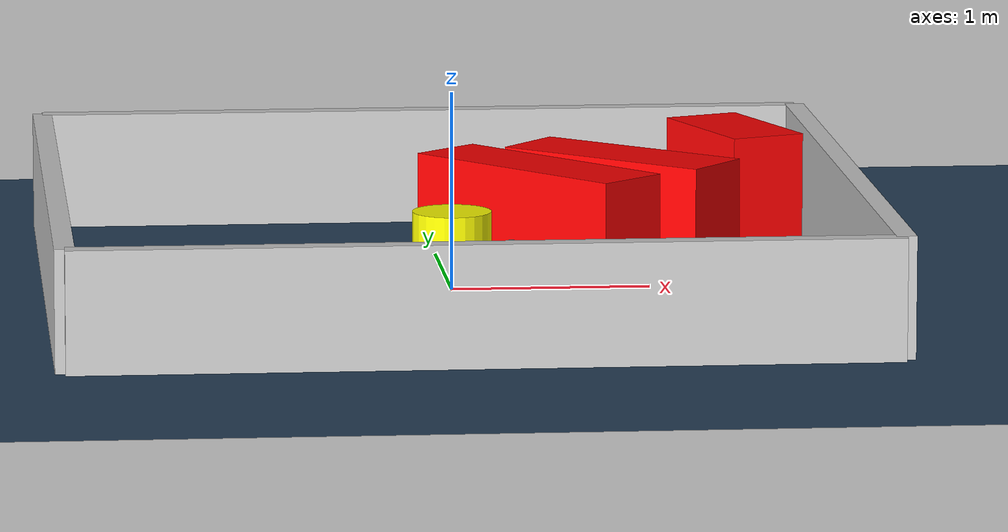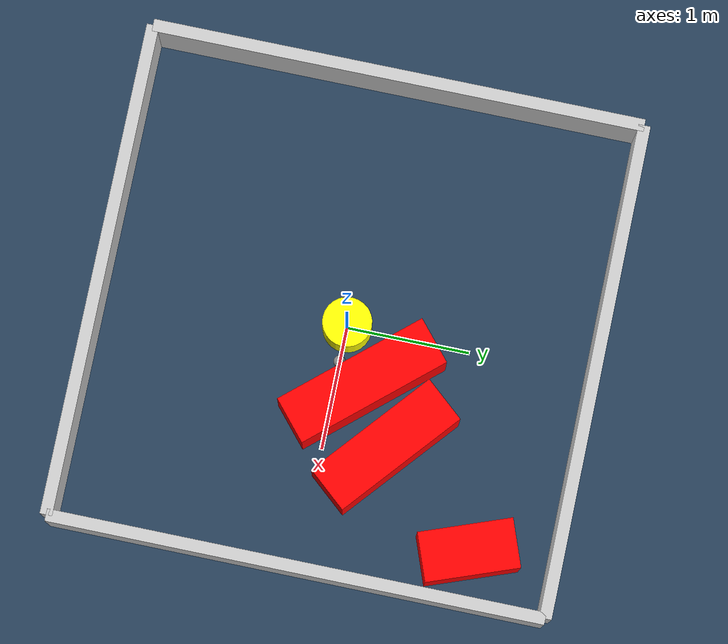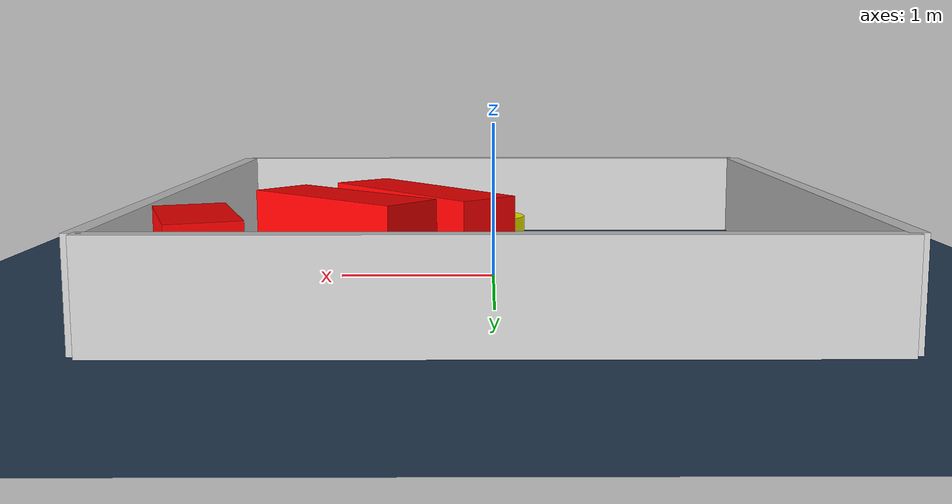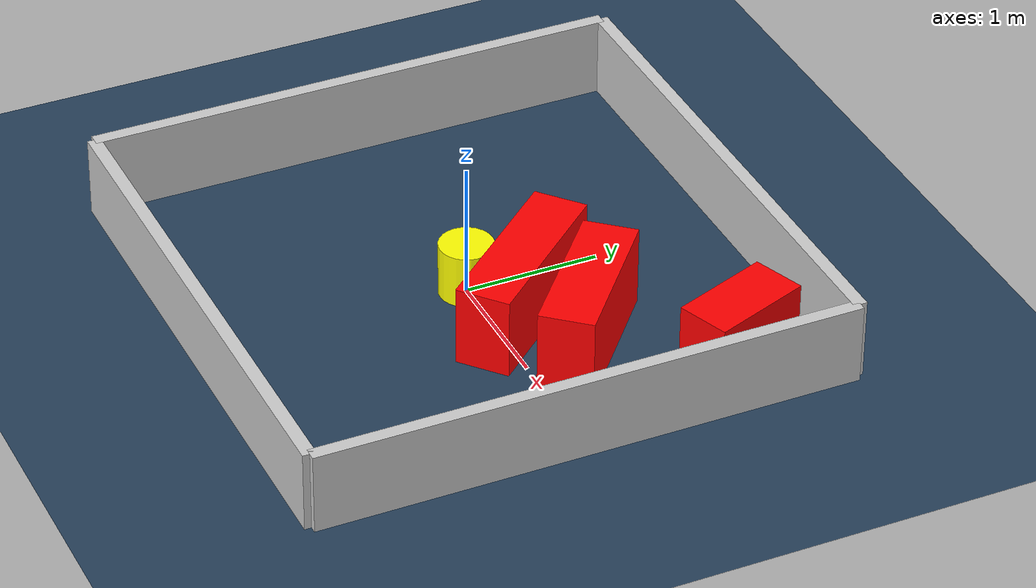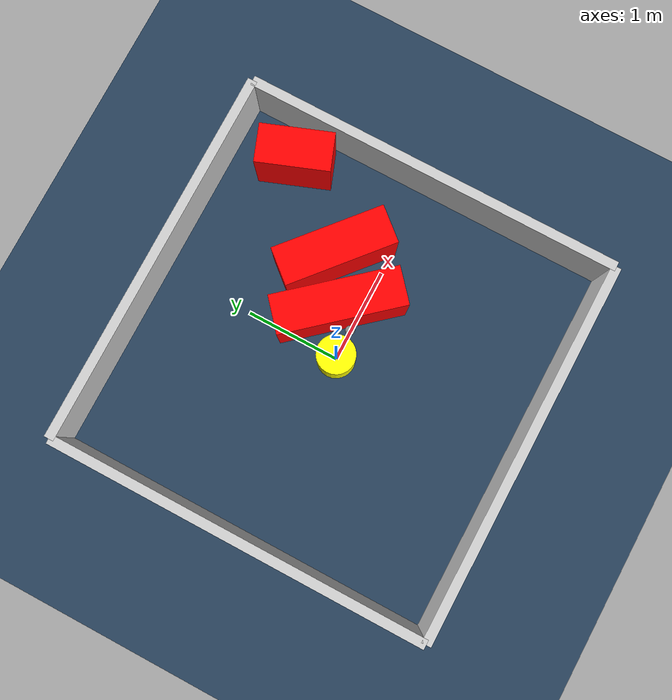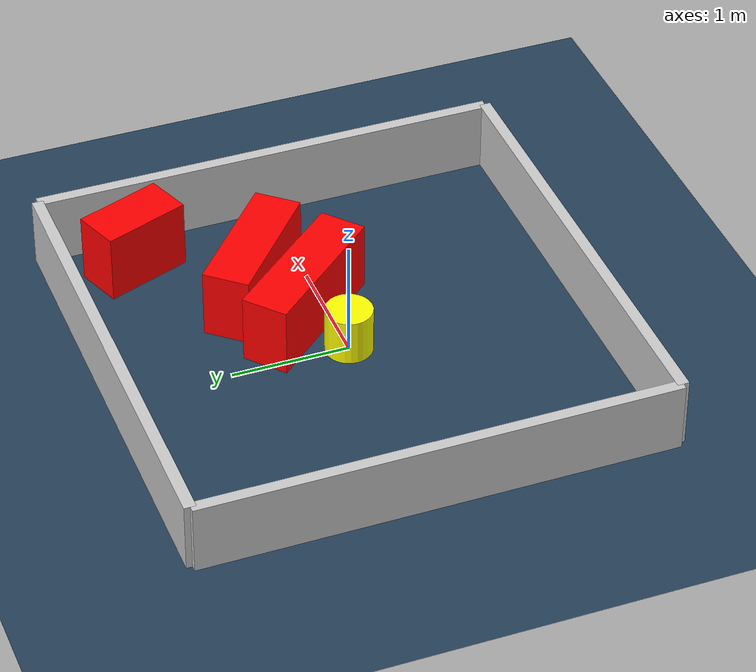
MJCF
<?xml version="1.0" ?>
<mujoco model="generated_environment">
  <option timestep="0.01" integrator="RK4" cone="elliptic"/>
  <default>
    <geom density="1"/>
  </default>
  <asset>
    <texture builtin="gradient" height="3072" rgb1="0.3 0.5 0.7" rgb2="0 0 0" type="skybox" width="512"/>
    <texture builtin="checker" height="300" mark="edge" markrgb="0.8 0.8 0.8" name="groundplane" rgb1="0.2 0.3 0.4" rgb2="0.1 0.2 0.3" type="2d" width="300"/>
    <material name="groundplane" reflectance="0.2" texrepeat="5 5" texture="groundplane" texuniform="true"/>
    <material name="robot" rgba="0.0 1.0 0.0 1"/>
  </asset>
  <worldbody>
    <light dir="0 0 -1" directional="true" pos="0 0 1.5"/>
    <geom condim="4" friction="1.0 0.005 0.001" material="groundplane" name="floor" size="0 0 0.05" type="plane"/>
    <body name="walls">
      <geom name="wall_1" condim="4" pos="-2.0 0.0 0.3" rgba="0.800000011920929 0.800000011920929 0.800000011920929 1.0" size="0.05 2.0 0.3" type="box"/>
      <geom name="wall_2" condim="4" pos="2.0 0.0 0.3" rgba="0.800000011920929 0.800000011920929 0.800000011920929 1.0" size="0.05 2.0 0.3" type="box"/>
      <geom name="wall_3" condim="4" pos="0.0 -2.0 0.3" rgba="0.800000011920929 0.800000011920929 0.800000011920929 1.0" size="2.0 0.05 0.3" type="box"/>
      <geom name="wall_4" condim="4" pos="0.0 2.0 0.3" rgba="0.800000011920929 0.800000011920929 0.800000011920929 1.0" size="2.0 0.05 0.3" type="box"/>
    </body>
    <body name="robot">
      <joint name="joint_x" type="slide" pos="0 0 0" axis="1 0 0"/>
      <joint name="joint_y" type="slide" pos="0 0 0" axis="0 1 0"/>
      <geom name="robot" type="sphere" pos="0.3 0.0 0.2" size="0.05" mass="5." friction="1.0 0.005 0.0001" condim="4" rgba="0.5 0.5 0.5 1.0"/>
      <site name="sensor_ball"/>
    </body>
    <body name="obstacle_movable_1">
      <geom name="obstacle_movable_1" condim="4" pos="0.0 0.0 0.2" euler="0 0 0.0" friction="1.0 0.005 0.001" rgba="1.0 1.0 0.0 1.0" size="0.2 0.2 0.0" type="cylinder" mass="0.1"/>
      <joint type="free"/>
    </body>
    <body name="obstacle_2_static">
      <geom name="obstacle_2_static" condim="4" pos="0.4550371841697769 0.21457440081714174 0.3" euler="0 0 130.8744375736412" friction="1.0 0.005 0.001" rgba="1 0 0 1" size="0.6549211075477479 0.2 0.3" type="box"/>
    </body>
    <body name="obstacle_3_static">
      <geom name="obstacle_3_static" condim="4" pos="0.912941722487238 0.5010187840843503 0.3" euler="0 0 139.3525069016949" friction="1.0 0.005 0.001" rgba="1 0 0 1" size="0.5871161664510455 0.2 0.3" type="box"/>
    </body>
    <body name="obstacle_4_static">
      <geom name="obstacle_4_static" condim="4" pos="1.593051647949781 1.3083893741342403 0.3" euler="0 0 110.36767891749037" friction="1.0 0.005 0.001" rgba="1 0 0 1" size="0.3811511174305152 0.2 0.3" type="box"/>
    </body>
  </worldbody>
  <actuator>
    <motor name="actuator_x" joint="joint_x" gear="1" ctrlrange="-1 1"/>
    <motor name="actuator_y" joint="joint_y" gear="1" ctrlrange="-1 1"/>
  </actuator>
</mujoco>
